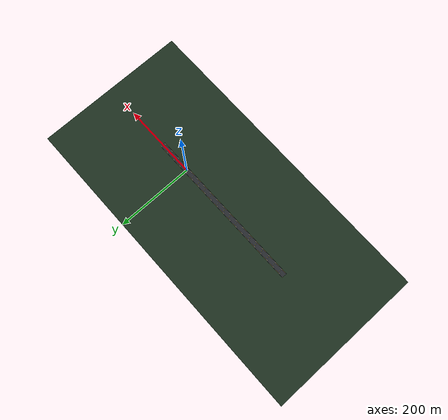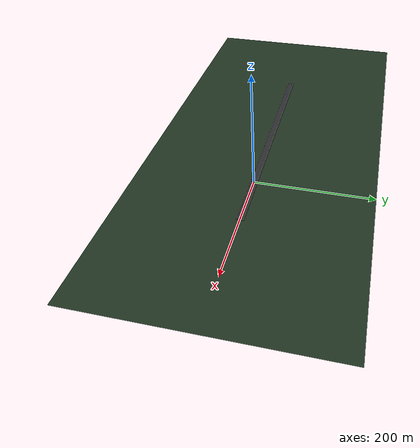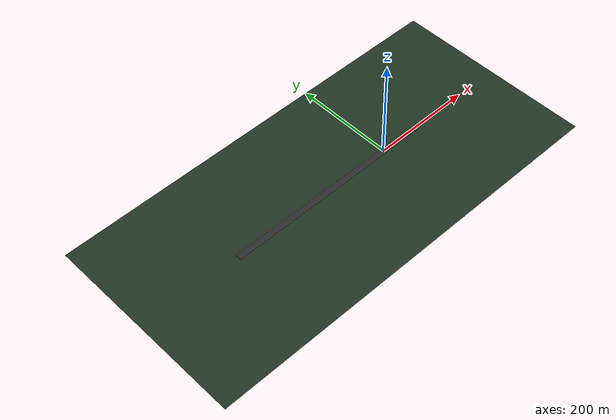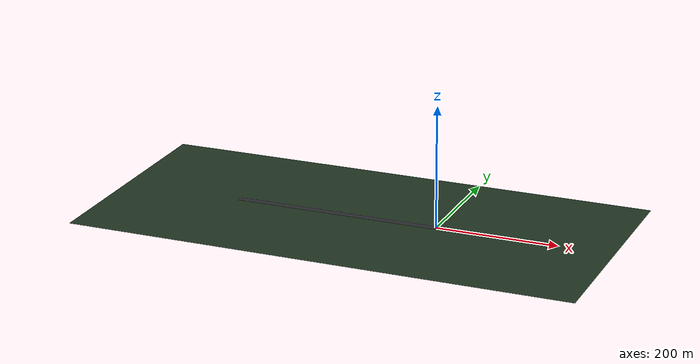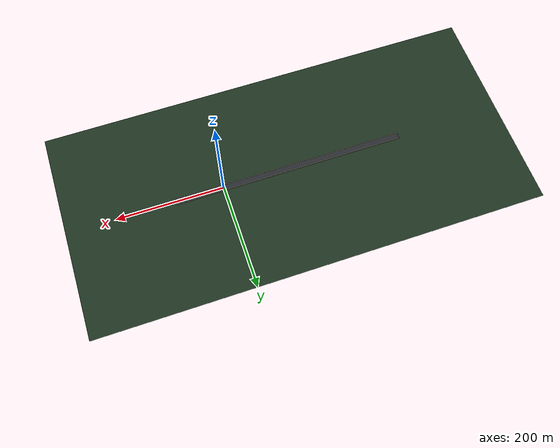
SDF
<?xml version="1.0" ?>
<sdf version="1.10">
  <world name="highway">
    <physics name="1ms" type="dart">
      <max_step_size>0.002</max_step_size>
      <real_time_factor>1.0</real_time_factor>
    </physics>
    <plugin filename="gz-sim-physics-system" name="gz::sim::systems::Physics"/>
    <plugin filename="gz-sim-user-commands-system" name="gz::sim::systems::UserCommands"/>
    <plugin filename="gz-sim-scene-broadcaster-system" name="gz::sim::systems::SceneBroadcaster"/>

    <scene>
      <ambient>0.55 0.57 0.62 1</ambient>
      <background>0.10 0.13 0.20 1</background>
      <sky></sky>
      <grid>false</grid>
    </scene>

    <light type="directional" name="sun">
      <cast_shadows>true</cast_shadows>
      <pose>-40 20 60 0 0 0</pose>
      <diffuse>1.0 0.98 0.95 1</diffuse>
      <specular>0.3 0.3 0.3 1</specular>
      <direction>0.4 0.2 -0.9</direction>
    </light>
    <light type="directional" name="fill">
      <cast_shadows>false</cast_shadows>
      <diffuse>0.35 0.38 0.45 1</diffuse>
      <specular>0 0 0 1</specular>
      <direction>-0.5 -0.3 -0.8</direction>
    </light>

    <model name="terrain">
      <static>true</static>
      <link name="link">
        <collision name="c"><geometry><plane><normal>0 0 1</normal>
          <size>2000 2000</size></plane></geometry></collision>
        <visual name="grass"><pose>-125.0 0 -0.06 0 0 0</pose><geometry><box><size>830.0 400 0.1</size></box></geometry><material><ambient>0.12 0.2 0.13 1</ambient><diffuse>0.12 0.2 0.13 1</diffuse><specular>0.1 0.1 0.1 1</specular><emissive>0.0 0.0 0.0 1</emissive></material></visual>
        <visual name="asphalt"><pose>-125.0 0 -0.02 0 0 0</pose><geometry><box><size>430.0 13.0 0.06</size></box></geometry><material><ambient>0.16 0.17 0.19 1</ambient><diffuse>0.16 0.17 0.19 1</diffuse><specular>0.1 0.1 0.1 1</specular><emissive>0.0 0.0 0.0 1</emissive></material></visual>
        <visual name="shoulder_l"><pose>-125.0 5.9 0.0 0 0 0</pose><geometry><box><size>430.0 0.5 0.05</size></box></geometry><material><ambient>0.7 0.6 0.35 1</ambient><diffuse>0.7 0.6 0.35 1</diffuse><specular>0.1 0.1 0.1 1</specular><emissive>0.0 0.0 0.0 1</emissive></material></visual>
        <visual name="shoulder_r"><pose>-125.0 -5.9 0.0 0 0 0</pose><geometry><box><size>430.0 0.5 0.05</size></box></geometry><material><ambient>0.7 0.6 0.35 1</ambient><diffuse>0.7 0.6 0.35 1</diffuse><specular>0.1 0.1 0.1 1</specular><emissive>0.0 0.0 0.0 1</emissive></material></visual>
        <visual name="edge_l"><pose>-125.0 4.85 0.02 0 0 0</pose><geometry><box><size>430.0 0.2 0.02</size></box></geometry><material><ambient>0.85 0.85 0.85 1</ambient><diffuse>0.85 0.85 0.85 1</diffuse><specular>0.1 0.1 0.1 1</specular><emissive>0.0 0.0 0.0 1</emissive></material></visual><visual name="edge_r"><pose>-125.0 -4.85 0.02 0 0 0</pose><geometry><box><size>430.0 0.2 0.02</size></box></geometry><material><ambient>0.85 0.85 0.85 1</ambient><diffuse>0.85 0.85 0.85 1</diffuse><specular>0.1 0.1 0.1 1</specular><emissive>0.0 0.0 0.0 1</emissive></material></visual><visual name="dash_0"><pose>-333.0 0.0 0.02 0 0 0</pose><geometry><box><size>4.0 0.22 0.02</size></box></geometry><material><ambient>0.9 0.85 0.35 1</ambient><diffuse>0.9 0.85 0.35 1</diffuse><specular>0.1 0.1 0.1 1</specular><emissive>0.0 0.0 0.0 1</emissive></material></visual><visual name="dash_1"><pose>-323.0 0.0 0.02 0 0 0</pose><geometry><box><size>4.0 0.22 0.02</size></box></geometry><material><ambient>0.9 0.85 0.35 1</ambient><diffuse>0.9 0.85 0.35 1</diffuse><specular>0.1 0.1 0.1 1</specular><emissive>0.0 0.0 0.0 1</emissive></material></visual><visual name="dash_2"><pose>-313.0 0.0 0.02 0 0 0</pose><geometry><box><size>4.0 0.22 0.02</size></box></geometry><material><ambient>0.9 0.85 0.35 1</ambient><diffuse>0.9 0.85 0.35 1</diffuse><specular>0.1 0.1 0.1 1</specular><emissive>0.0 0.0 0.0 1</emissive></material></visual><visual name="dash_3"><pose>-303.0 0.0 0.02 0 0 0</pose><geometry><box><size>4.0 0.22 0.02</size></box></geometry><material><ambient>0.9 0.85 0.35 1</ambient><diffuse>0.9 0.85 0.35 1</diffuse><specular>0.1 0.1 0.1 1</specular><emissive>0.0 0.0 0.0 1</emissive></material></visual><visual name="dash_4"><pose>-293.0 0.0 0.02 0 0 0</pose><geometry><box><size>4.0 0.22 0.02</size></box></geometry><material><ambient>0.9 0.85 0.35 1</ambient><diffuse>0.9 0.85 0.35 1</diffuse><specular>0.1 0.1 0.1 1</specular><emissive>0.0 0.0 0.0 1</emissive></material></visual><visual name="dash_5"><pose>-283.0 0.0 0.02 0 0 0</pose><geometry><box><size>4.0 0.22 0.02</size></box></geometry><material><ambient>0.9 0.85 0.35 1</ambient><diffuse>0.9 0.85 0.35 1</diffuse><specular>0.1 0.1 0.1 1</specular><emissive>0.0 0.0 0.0 1</emissive></material></visual><visual name="dash_6"><pose>-273.0 0.0 0.02 0 0 0</pose><geometry><box><size>4.0 0.22 0.02</size></box></geometry><material><ambient>0.9 0.85 0.35 1</ambient><diffuse>0.9 0.85 0.35 1</diffuse><specular>0.1 0.1 0.1 1</specular><emissive>0.0 0.0 0.0 1</emissive></material></visual><visual name="dash_7"><pose>-263.0 0.0 0.02 0 0 0</pose><geometry><box><size>4.0 0.22 0.02</size></box></geometry><material><ambient>0.9 0.85 0.35 1</ambient><diffuse>0.9 0.85 0.35 1</diffuse><specular>0.1 0.1 0.1 1</specular><emissive>0.0 0.0 0.0 1</emissive></material></visual><visual name="dash_8"><pose>-253.0 0.0 0.02 0 0 0</pose><geometry><box><size>4.0 0.22 0.02</size></box></geometry><material><ambient>0.9 0.85 0.35 1</ambient><diffuse>0.9 0.85 0.35 1</diffuse><specular>0.1 0.1 0.1 1</specular><emissive>0.0 0.0 0.0 1</emissive></material></visual><visual name="dash_9"><pose>-243.0 0.0 0.02 0 0 0</pose><geometry><box><size>4.0 0.22 0.02</size></box></geometry><material><ambient>0.9 0.85 0.35 1</ambient><diffuse>0.9 0.85 0.35 1</diffuse><specular>0.1 0.1 0.1 1</specular><emissive>0.0 0.0 0.0 1</emissive></material></visual><visual name="dash_10"><pose>-233.0 0.0 0.02 0 0 0</pose><geometry><box><size>4.0 0.22 0.02</size></box></geometry><material><ambient>0.9 0.85 0.35 1</ambient><diffuse>0.9 0.85 0.35 1</diffuse><specular>0.1 0.1 0.1 1</specular><emissive>0.0 0.0 0.0 1</emissive></material></visual><visual name="dash_11"><pose>-223.0 0.0 0.02 0 0 0</pose><geometry><box><size>4.0 0.22 0.02</size></box></geometry><material><ambient>0.9 0.85 0.35 1</ambient><diffuse>0.9 0.85 0.35 1</diffuse><specular>0.1 0.1 0.1 1</specular><emissive>0.0 0.0 0.0 1</emissive></material></visual><visual name="dash_12"><pose>-213.0 0.0 0.02 0 0 0</pose><geometry><box><size>4.0 0.22 0.02</size></box></geometry><material><ambient>0.9 0.85 0.35 1</ambient><diffuse>0.9 0.85 0.35 1</diffuse><specular>0.1 0.1 0.1 1</specular><emissive>0.0 0.0 0.0 1</emissive></material></visual><visual name="dash_13"><pose>-203.0 0.0 0.02 0 0 0</pose><geometry><box><size>4.0 0.22 0.02</size></box></geometry><material><ambient>0.9 0.85 0.35 1</ambient><diffuse>0.9 0.85 0.35 1</diffuse><specular>0.1 0.1 0.1 1</specular><emissive>0.0 0.0 0.0 1</emissive></material></visual><visual name="dash_14"><pose>-193.0 0.0 0.02 0 0 0</pose><geometry><box><size>4.0 0.22 0.02</size></box></geometry><material><ambient>0.9 0.85 0.35 1</ambient><diffuse>0.9 0.85 0.35 1</diffuse><specular>0.1 0.1 0.1 1</specular><emissive>0.0 0.0 0.0 1</emissive></material></visual><visual name="dash_15"><pose>-183.0 0.0 0.02 0 0 0</pose><geometry><box><size>4.0 0.22 0.02</size></box></geometry><material><ambient>0.9 0.85 0.35 1</ambient><diffuse>0.9 0.85 0.35 1</diffuse><specular>0.1 0.1 0.1 1</specular><emissive>0.0 0.0 0.0 1</emissive></material></visual><visual name="dash_16"><pose>-173.0 0.0 0.02 0 0 0</pose><geometry><box><size>4.0 0.22 0.02</size></box></geometry><material><ambient>0.9 0.85 0.35 1</ambient><diffuse>0.9 0.85 0.35 1</diffuse><specular>0.1 0.1 0.1 1</specular><emissive>0.0 0.0 0.0 1</emissive></material></visual><visual name="dash_17"><pose>-163.0 0.0 0.02 0 0 0</pose><geometry><box><size>4.0 0.22 0.02</size></box></geometry><material><ambient>0.9 0.85 0.35 1</ambient><diffuse>0.9 0.85 0.35 1</diffuse><specular>0.1 0.1 0.1 1</specular><emissive>0.0 0.0 0.0 1</emissive></material></visual><visual name="dash_18"><pose>-153.0 0.0 0.02 0 0 0</pose><geometry><box><size>4.0 0.22 0.02</size></box></geometry><material><ambient>0.9 0.85 0.35 1</ambient><diffuse>0.9 0.85 0.35 1</diffuse><specular>0.1 0.1 0.1 1</specular><emissive>0.0 0.0 0.0 1</emissive></material></visual><visual name="dash_19"><pose>-143.0 0.0 0.02 0 0 0</pose><geometry><box><size>4.0 0.22 0.02</size></box></geometry><material><ambient>0.9 0.85 0.35 1</ambient><diffuse>0.9 0.85 0.35 1</diffuse><specular>0.1 0.1 0.1 1</specular><emissive>0.0 0.0 0.0 1</emissive></material></visual><visual name="dash_20"><pose>-133.0 0.0 0.02 0 0 0</pose><geometry><box><size>4.0 0.22 0.02</size></box></geometry><material><ambient>0.9 0.85 0.35 1</ambient><diffuse>0.9 0.85 0.35 1</diffuse><specular>0.1 0.1 0.1 1</specular><emissive>0.0 0.0 0.0 1</emissive></material></visual><visual name="dash_21"><pose>-123.0 0.0 0.02 0 0 0</pose><geometry><box><size>4.0 0.22 0.02</size></box></geometry><material><ambient>0.9 0.85 0.35 1</ambient><diffuse>0.9 0.85 0.35 1</diffuse><specular>0.1 0.1 0.1 1</specular><emissive>0.0 0.0 0.0 1</emissive></material></visual><visual name="dash_22"><pose>-113.0 0.0 0.02 0 0 0</pose><geometry><box><size>4.0 0.22 0.02</size></box></geometry><material><ambient>0.9 0.85 0.35 1</ambient><diffuse>0.9 0.85 0.35 1</diffuse><specular>0.1 0.1 0.1 1</specular><emissive>0.0 0.0 0.0 1</emissive></material></visual><visual name="dash_23"><pose>-103.0 0.0 0.02 0 0 0</pose><geometry><box><size>4.0 0.22 0.02</size></box></geometry><material><ambient>0.9 0.85 0.35 1</ambient><diffuse>0.9 0.85 0.35 1</diffuse><specular>0.1 0.1 0.1 1</specular><emissive>0.0 0.0 0.0 1</emissive></material></visual><visual name="dash_24"><pose>-93.0 0.0 0.02 0 0 0</pose><geometry><box><size>4.0 0.22 0.02</size></box></geometry><material><ambient>0.9 0.85 0.35 1</ambient><diffuse>0.9 0.85 0.35 1</diffuse><specular>0.1 0.1 0.1 1</specular><emissive>0.0 0.0 0.0 1</emissive></material></visual><visual name="dash_25"><pose>-83.0 0.0 0.02 0 0 0</pose><geometry><box><size>4.0 0.22 0.02</size></box></geometry><material><ambient>0.9 0.85 0.35 1</ambient><diffuse>0.9 0.85 0.35 1</diffuse><specular>0.1 0.1 0.1 1</specular><emissive>0.0 0.0 0.0 1</emissive></material></visual><visual name="dash_26"><pose>-73.0 0.0 0.02 0 0 0</pose><geometry><box><size>4.0 0.22 0.02</size></box></geometry><material><ambient>0.9 0.85 0.35 1</ambient><diffuse>0.9 0.85 0.35 1</diffuse><specular>0.1 0.1 0.1 1</specular><emissive>0.0 0.0 0.0 1</emissive></material></visual><visual name="dash_27"><pose>-63.0 0.0 0.02 0 0 0</pose><geometry><box><size>4.0 0.22 0.02</size></box></geometry><material><ambient>0.9 0.85 0.35 1</ambient><diffuse>0.9 0.85 0.35 1</diffuse><specular>0.1 0.1 0.1 1</specular><emissive>0.0 0.0 0.0 1</emissive></material></visual><visual name="dash_28"><pose>-53.0 0.0 0.02 0 0 0</pose><geometry><box><size>4.0 0.22 0.02</size></box></geometry><material><ambient>0.9 0.85 0.35 1</ambient><diffuse>0.9 0.85 0.35 1</diffuse><specular>0.1 0.1 0.1 1</specular><emissive>0.0 0.0 0.0 1</emissive></material></visual><visual name="dash_29"><pose>-43.0 0.0 0.02 0 0 0</pose><geometry><box><size>4.0 0.22 0.02</size></box></geometry><material><ambient>0.9 0.85 0.35 1</ambient><diffuse>0.9 0.85 0.35 1</diffuse><specular>0.1 0.1 0.1 1</specular><emissive>0.0 0.0 0.0 1</emissive></material></visual><visual name="dash_30"><pose>-33.0 0.0 0.02 0 0 0</pose><geometry><box><size>4.0 0.22 0.02</size></box></geometry><material><ambient>0.9 0.85 0.35 1</ambient><diffuse>0.9 0.85 0.35 1</diffuse><specular>0.1 0.1 0.1 1</specular><emissive>0.0 0.0 0.0 1</emissive></material></visual><visual name="dash_31"><pose>-23.0 0.0 0.02 0 0 0</pose><geometry><box><size>4.0 0.22 0.02</size></box></geometry><material><ambient>0.9 0.85 0.35 1</ambient><diffuse>0.9 0.85 0.35 1</diffuse><specular>0.1 0.1 0.1 1</specular><emissive>0.0 0.0 0.0 1</emissive></material></visual><visual name="dash_32"><pose>-13.0 0.0 0.02 0 0 0</pose><geometry><box><size>4.0 0.22 0.02</size></box></geometry><material><ambient>0.9 0.85 0.35 1</ambient><diffuse>0.9 0.85 0.35 1</diffuse><specular>0.1 0.1 0.1 1</specular><emissive>0.0 0.0 0.0 1</emissive></material></visual><visual name="dash_33"><pose>-3.0 0.0 0.02 0 0 0</pose><geometry><box><size>4.0 0.22 0.02</size></box></geometry><material><ambient>0.9 0.85 0.35 1</ambient><diffuse>0.9 0.85 0.35 1</diffuse><specular>0.1 0.1 0.1 1</specular><emissive>0.0 0.0 0.0 1</emissive></material></visual><visual name="dash_34"><pose>7.0 0.0 0.02 0 0 0</pose><geometry><box><size>4.0 0.22 0.02</size></box></geometry><material><ambient>0.9 0.85 0.35 1</ambient><diffuse>0.9 0.85 0.35 1</diffuse><specular>0.1 0.1 0.1 1</specular><emissive>0.0 0.0 0.0 1</emissive></material></visual><visual name="dash_35"><pose>17.0 0.0 0.02 0 0 0</pose><geometry><box><size>4.0 0.22 0.02</size></box></geometry><material><ambient>0.9 0.85 0.35 1</ambient><diffuse>0.9 0.85 0.35 1</diffuse><specular>0.1 0.1 0.1 1</specular><emissive>0.0 0.0 0.0 1</emissive></material></visual><visual name="dash_36"><pose>27.0 0.0 0.02 0 0 0</pose><geometry><box><size>4.0 0.22 0.02</size></box></geometry><material><ambient>0.9 0.85 0.35 1</ambient><diffuse>0.9 0.85 0.35 1</diffuse><specular>0.1 0.1 0.1 1</specular><emissive>0.0 0.0 0.0 1</emissive></material></visual><visual name="dash_37"><pose>37.0 0.0 0.02 0 0 0</pose><geometry><box><size>4.0 0.22 0.02</size></box></geometry><material><ambient>0.9 0.85 0.35 1</ambient><diffuse>0.9 0.85 0.35 1</diffuse><specular>0.1 0.1 0.1 1</specular><emissive>0.0 0.0 0.0 1</emissive></material></visual><visual name="dash_38"><pose>47.0 0.0 0.02 0 0 0</pose><geometry><box><size>4.0 0.22 0.02</size></box></geometry><material><ambient>0.9 0.85 0.35 1</ambient><diffuse>0.9 0.85 0.35 1</diffuse><specular>0.1 0.1 0.1 1</specular><emissive>0.0 0.0 0.0 1</emissive></material></visual><visual name="dash_39"><pose>57.0 0.0 0.02 0 0 0</pose><geometry><box><size>4.0 0.22 0.02</size></box></geometry><material><ambient>0.9 0.85 0.35 1</ambient><diffuse>0.9 0.85 0.35 1</diffuse><specular>0.1 0.1 0.1 1</specular><emissive>0.0 0.0 0.0 1</emissive></material></visual><visual name="dash_40"><pose>67.0 0.0 0.02 0 0 0</pose><geometry><box><size>4.0 0.22 0.02</size></box></geometry><material><ambient>0.9 0.85 0.35 1</ambient><diffuse>0.9 0.85 0.35 1</diffuse><specular>0.1 0.1 0.1 1</specular><emissive>0.0 0.0 0.0 1</emissive></material></visual><visual name="dash_41"><pose>77.0 0.0 0.02 0 0 0</pose><geometry><box><size>4.0 0.22 0.02</size></box></geometry><material><ambient>0.9 0.85 0.35 1</ambient><diffuse>0.9 0.85 0.35 1</diffuse><specular>0.1 0.1 0.1 1</specular><emissive>0.0 0.0 0.0 1</emissive></material></visual>
      </link>
    </model>

    <gui fullscreen="0">
      <plugin filename="MinimalScene" name="3D View">
        <gz-gui><title>3D View</title><property type="bool" key="showTitleBar">false</property>
          <property type="string" key="state">docked</property></gz-gui>
        <engine>ogre2</engine>
        <scene>scene</scene>
        <ambient_light>0.5 0.5 0.5</ambient_light>
        <background_color>0.10 0.13 0.20</background_color>
        <camera_pose>-185 -28 20 0 0.159 0.238</camera_pose>
      </plugin>
      <plugin filename="GzSceneManager" name="Scene Manager"/>
      <plugin filename="InteractiveViewControl" name="Interactive view control"/>
      <plugin filename="CameraTracking" name="Camera Tracking"/>
      <plugin filename="WorldControl" name="World control">
        <gz-gui><property type="bool" key="resizable">false</property>
          <property type="bool" key="showTitleBar">false</property>
          <property type="string" key="state">floating</property>
          <anchors target="3D View"><line own="left" target="left"/>
            <line own="bottom" target="bottom"/></anchors></gz-gui>
        <play_pause>true</play_pause><step>true</step>
        <start_paused>false</start_paused>
      </plugin>
    </gui>
  </world>
</sdf>
